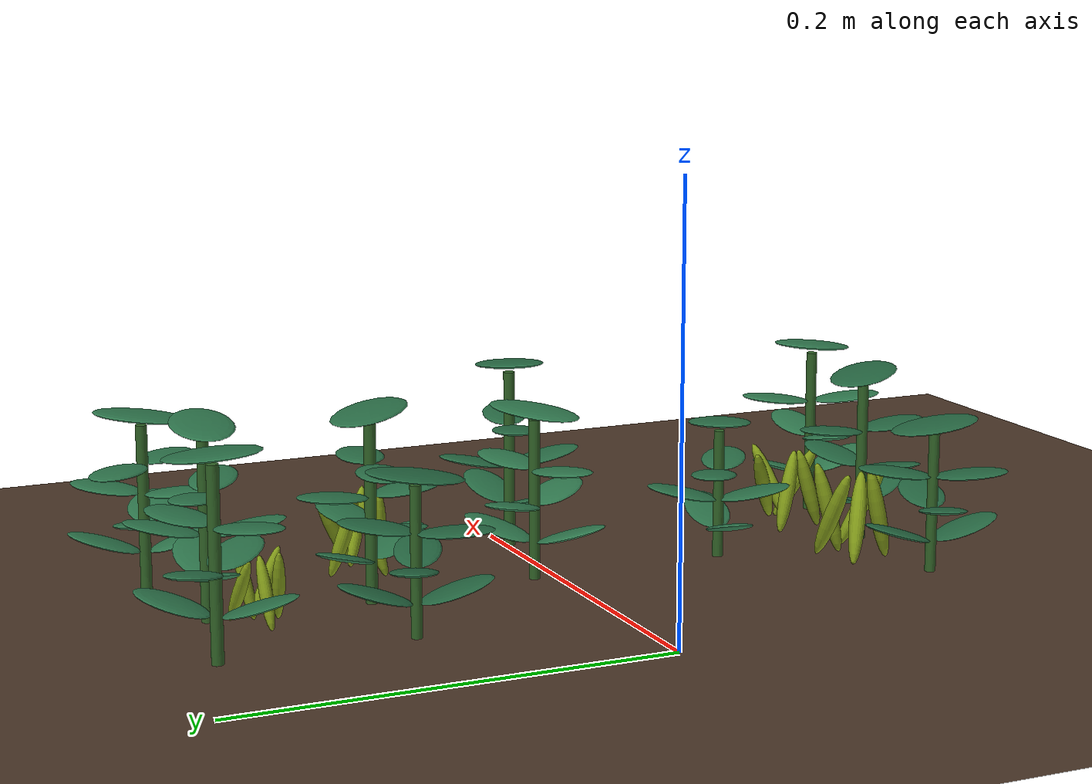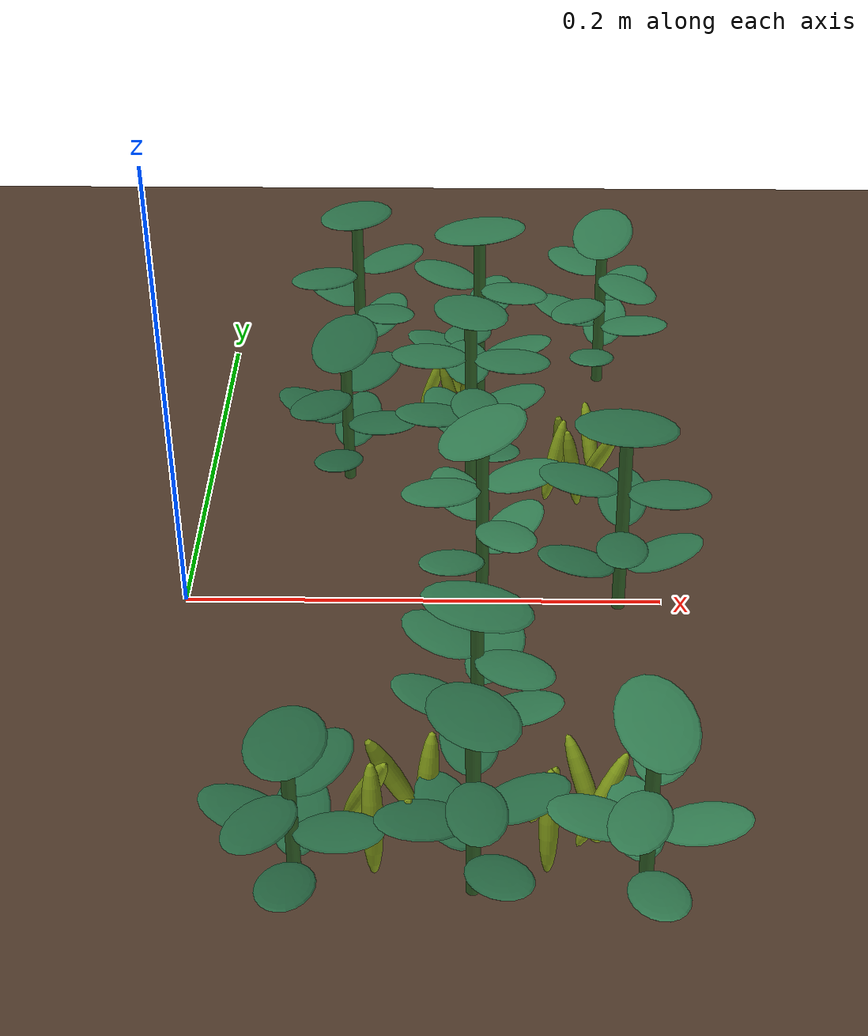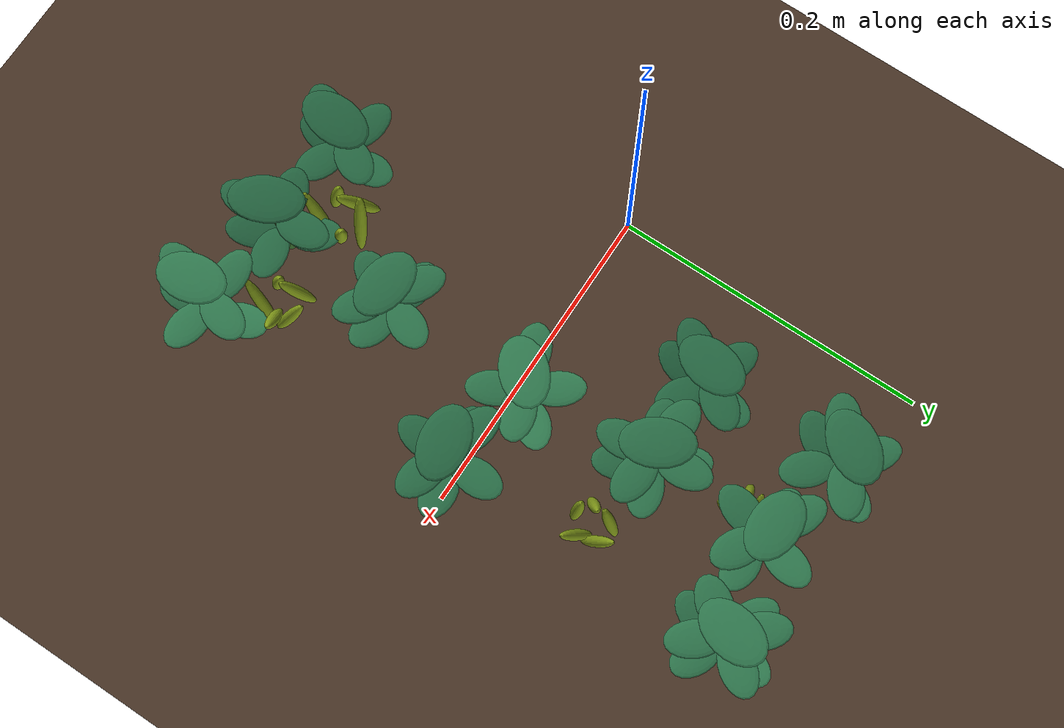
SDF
<sdf version="1.9">
 <world name="jim_field">
  <model name="ground_plane">
   <static>true</static>
   <link name="link">
    <collision name="collision">
     <geometry><plane><normal>0 0 1</normal><size>40 40</size></plane></geometry>
    </collision>
    <visual name="visual">
     <geometry><plane><normal>0 0 1</normal><size>40 40</size></plane></geometry>
     <material>
      <ambient>0.20 0.15 0.11 1</ambient>
      <diffuse>0.30 0.22 0.16 1</diffuse>
      <specular>0.01 0.01 0.01 1</specular>
     </material>
    </visual>
   </link>
  </model>
  <model name="field">
   <static>true</static>
   <pose>0.1837 -0.2516 0 0 0 0</pose>
   <model name="crop_108">
    <static>true</static>
    <pose>-0.1236 0.0887 0 0 0 0</pose>
    <link name="link">
     <visual name="stem">
      <pose>0 0 0.0328 0 0 0</pose>
      <geometry><cylinder><radius>0.0025</radius><length>0.0656</length></cylinder></geometry>
      <material>
       <ambient>0.10 0.22 0.09 1</ambient>
       <diffuse>0.20 0.40 0.16 1</diffuse>
       <specular>0.05 0.06 0.05 1</specular>
      </material>
     </visual>
     <visual name="leaflet_0_0">
      <pose>-0.0013 -0.0174 0.0197 0 -0.300 4.6384</pose>
      <geometry><ellipsoid><radii>0.0170 0.0105 0.0016</radii></ellipsoid></geometry>
      <material>
       <ambient>0.078 0.214 0.121 1</ambient>
       <diffuse>0.147 0.408 0.259 1</diffuse>
       <specular>0.05 0.06 0.05 1</specular>
      </material>
     </visual>
     <visual name="leaflet_0_1">
      <pose>0.0013 0.0174 0.0197 0 -0.300 7.7800</pose>
      <geometry><ellipsoid><radii>0.0170 0.0105 0.0016</radii></ellipsoid></geometry>
      <material>
       <ambient>0.078 0.214 0.121 1</ambient>
       <diffuse>0.147 0.408 0.259 1</diffuse>
       <specular>0.05 0.06 0.05 1</specular>
      </material>
     </visual>
     <visual name="leaflet_1_0">
      <pose>0.0167 -0.0051 0.0332 0 -0.200 5.9884</pose>
      <geometry><ellipsoid><radii>0.0170 0.0105 0.0016</radii></ellipsoid></geometry>
      <material>
       <ambient>0.078 0.214 0.121 1</ambient>
       <diffuse>0.147 0.408 0.259 1</diffuse>
       <specular>0.05 0.06 0.05 1</specular>
      </material>
     </visual>
     <visual name="leaflet_1_1">
      <pose>-0.0167 0.0051 0.0332 0 -0.200 9.1300</pose>
      <geometry><ellipsoid><radii>0.0170 0.0105 0.0016</radii></ellipsoid></geometry>
      <material>
       <ambient>0.078 0.214 0.121 1</ambient>
       <diffuse>0.147 0.408 0.259 1</diffuse>
       <specular>0.05 0.06 0.05 1</specular>
      </material>
     </visual>
     <visual name="leaflet_2_0">
      <pose>0.0086 0.0152 0.0468 0 -0.100 7.3384</pose>
      <geometry><ellipsoid><radii>0.0170 0.0105 0.0016</radii></ellipsoid></geometry>
      <material>
       <ambient>0.078 0.214 0.121 1</ambient>
       <diffuse>0.147 0.408 0.259 1</diffuse>
       <specular>0.05 0.06 0.05 1</specular>
      </material>
     </visual>
     <visual name="leaflet_2_1">
      <pose>-0.0086 -0.0152 0.0468 0 -0.100 10.4800</pose>
      <geometry><ellipsoid><radii>0.0170 0.0105 0.0016</radii></ellipsoid></geometry>
      <material>
       <ambient>0.078 0.214 0.121 1</ambient>
       <diffuse>0.147 0.408 0.259 1</diffuse>
       <specular>0.05 0.06 0.05 1</specular>
      </material>
     </visual>
     <visual name="leaflet_terminal">
      <pose>0 0 0.0696 0 -0.12 4.6384</pose>
      <geometry><ellipsoid><radii>0.0215 0.0140 0.0018</radii></ellipsoid></geometry>
      <material>
       <ambient>0.078 0.214 0.121 1</ambient>
       <diffuse>0.147 0.408 0.259 1</diffuse>
       <specular>0.05 0.06 0.05 1</specular>
      </material>
     </visual>
    </link>
   </model>
   <model name="crop_109">
    <static>true</static>
    <pose>-0.0611 0.0886 0 0 0 0</pose>
    <link name="link">
     <visual name="stem">
      <pose>0 0 0.0390 0 0 0</pose>
      <geometry><cylinder><radius>0.0026</radius><length>0.0779</length></cylinder></geometry>
      <material>
       <ambient>0.10 0.22 0.09 1</ambient>
       <diffuse>0.20 0.40 0.16 1</diffuse>
       <specular>0.05 0.06 0.05 1</specular>
      </material>
     </visual>
     <visual name="leaflet_0_0">
      <pose>0.0090 -0.0158 0.0234 0 -0.300 5.2289</pose>
      <geometry><ellipsoid><radii>0.0170 0.0105 0.0016</radii></ellipsoid></geometry>
      <material>
       <ambient>0.079 0.215 0.122 1</ambient>
       <diffuse>0.148 0.410 0.261 1</diffuse>
       <specular>0.05 0.06 0.05 1</specular>
      </material>
     </visual>
     <visual name="leaflet_0_1">
      <pose>-0.0090 0.0158 0.0234 0 -0.300 8.3705</pose>
      <geometry><ellipsoid><radii>0.0170 0.0105 0.0016</radii></ellipsoid></geometry>
      <material>
       <ambient>0.079 0.215 0.122 1</ambient>
       <diffuse>0.148 0.410 0.261 1</diffuse>
       <specular>0.05 0.06 0.05 1</specular>
      </material>
     </visual>
     <visual name="leaflet_1_0">
      <pose>0.0174 0.0053 0.0395 0 -0.200 6.5789</pose>
      <geometry><ellipsoid><radii>0.0170 0.0105 0.0016</radii></ellipsoid></geometry>
      <material>
       <ambient>0.079 0.215 0.122 1</ambient>
       <diffuse>0.148 0.410 0.261 1</diffuse>
       <specular>0.05 0.06 0.05 1</specular>
      </material>
     </visual>
     <visual name="leaflet_1_1">
      <pose>-0.0174 -0.0053 0.0395 0 -0.200 9.7205</pose>
      <geometry><ellipsoid><radii>0.0170 0.0105 0.0016</radii></ellipsoid></geometry>
      <material>
       <ambient>0.079 0.215 0.122 1</ambient>
       <diffuse>0.148 0.410 0.261 1</diffuse>
       <specular>0.05 0.06 0.05 1</specular>
      </material>
     </visual>
     <visual name="leaflet_2_0">
      <pose>-0.0014 0.0181 0.0556 0 -0.100 7.9289</pose>
      <geometry><ellipsoid><radii>0.0170 0.0105 0.0016</radii></ellipsoid></geometry>
      <material>
       <ambient>0.079 0.215 0.122 1</ambient>
       <diffuse>0.148 0.410 0.261 1</diffuse>
       <specular>0.05 0.06 0.05 1</specular>
      </material>
     </visual>
     <visual name="leaflet_2_1">
      <pose>0.0014 -0.0181 0.0556 0 -0.100 11.0705</pose>
      <geometry><ellipsoid><radii>0.0170 0.0105 0.0016</radii></ellipsoid></geometry>
      <material>
       <ambient>0.079 0.215 0.122 1</ambient>
       <diffuse>0.148 0.410 0.261 1</diffuse>
       <specular>0.05 0.06 0.05 1</specular>
      </material>
     </visual>
     <visual name="leaflet_terminal">
      <pose>0 0 0.0819 0 -0.12 5.2289</pose>
      <geometry><ellipsoid><radii>0.0215 0.0140 0.0018</radii></ellipsoid></geometry>
      <material>
       <ambient>0.079 0.215 0.122 1</ambient>
       <diffuse>0.148 0.410 0.261 1</diffuse>
       <specular>0.05 0.06 0.05 1</specular>
      </material>
     </visual>
    </link>
   </model>
   <model name="crop_110">
    <static>true</static>
    <pose>-0.0014 0.0822 0 0 0 0</pose>
    <link name="link">
     <visual name="stem">
      <pose>0 0 0.0406 0 0 0</pose>
      <geometry><cylinder><radius>0.0026</radius><length>0.0812</length></cylinder></geometry>
      <material>
       <ambient>0.10 0.22 0.09 1</ambient>
       <diffuse>0.20 0.40 0.16 1</diffuse>
       <specular>0.05 0.06 0.05 1</specular>
      </material>
     </visual>
     <visual name="leaflet_0_0">
      <pose>-0.0028 0.0181 0.0244 0 -0.300 1.7227</pose>
      <geometry><ellipsoid><radii>0.0170 0.0105 0.0016</radii></ellipsoid></geometry>
      <material>
       <ambient>0.099 0.249 0.149 1</ambient>
       <diffuse>0.188 0.477 0.308 1</diffuse>
       <specular>0.05 0.06 0.05 1</specular>
      </material>
     </visual>
     <visual name="leaflet_0_1">
      <pose>0.0028 -0.0181 0.0244 0 -0.300 4.8643</pose>
      <geometry><ellipsoid><radii>0.0170 0.0105 0.0016</radii></ellipsoid></geometry>
      <material>
       <ambient>0.099 0.249 0.149 1</ambient>
       <diffuse>0.188 0.477 0.308 1</diffuse>
       <specular>0.05 0.06 0.05 1</specular>
      </material>
     </visual>
     <visual name="leaflet_1_0">
      <pose>-0.0183 0.0013 0.0412 0 -0.200 3.0727</pose>
      <geometry><ellipsoid><radii>0.0170 0.0105 0.0016</radii></ellipsoid></geometry>
      <material>
       <ambient>0.099 0.249 0.149 1</ambient>
       <diffuse>0.188 0.477 0.308 1</diffuse>
       <specular>0.05 0.06 0.05 1</specular>
      </material>
     </visual>
     <visual name="leaflet_1_1">
      <pose>0.0183 -0.0013 0.0412 0 -0.200 6.2143</pose>
      <geometry><ellipsoid><radii>0.0170 0.0105 0.0016</radii></ellipsoid></geometry>
      <material>
       <ambient>0.099 0.249 0.149 1</ambient>
       <diffuse>0.188 0.477 0.308 1</diffuse>
       <specular>0.05 0.06 0.05 1</specular>
      </material>
     </visual>
     <visual name="leaflet_2_0">
      <pose>-0.0052 -0.0176 0.0580 0 -0.100 4.4227</pose>
      <geometry><ellipsoid><radii>0.0170 0.0105 0.0016</radii></ellipsoid></geometry>
      <material>
       <ambient>0.099 0.249 0.149 1</ambient>
       <diffuse>0.188 0.477 0.308 1</diffuse>
       <specular>0.05 0.06 0.05 1</specular>
      </material>
     </visual>
     <visual name="leaflet_2_1">
      <pose>0.0052 0.0176 0.0580 0 -0.100 7.5643</pose>
      <geometry><ellipsoid><radii>0.0170 0.0105 0.0016</radii></ellipsoid></geometry>
      <material>
       <ambient>0.099 0.249 0.149 1</ambient>
       <diffuse>0.188 0.477 0.308 1</diffuse>
       <specular>0.05 0.06 0.05 1</specular>
      </material>
     </visual>
     <visual name="leaflet_terminal">
      <pose>0 0 0.0852 0 -0.12 1.7227</pose>
      <geometry><ellipsoid><radii>0.0215 0.0140 0.0018</radii></ellipsoid></geometry>
      <material>
       <ambient>0.099 0.249 0.149 1</ambient>
       <diffuse>0.188 0.477 0.308 1</diffuse>
       <specular>0.05 0.06 0.05 1</specular>
      </material>
     </visual>
    </link>
   </model>
   <model name="crop_126">
    <static>true</static>
    <pose>-0.0603 0.1668 0 0 0 0</pose>
    <link name="link">
     <visual name="stem">
      <pose>0 0 0.0306 0 0 0</pose>
      <geometry><cylinder><radius>0.0025</radius><length>0.0612</length></cylinder></geometry>
      <material>
       <ambient>0.10 0.22 0.09 1</ambient>
       <diffuse>0.20 0.40 0.16 1</diffuse>
       <specular>0.05 0.06 0.05 1</specular>
      </material>
     </visual>
     <visual name="leaflet_0_0">
      <pose>-0.0170 0.0032 0.0184 0 -0.300 2.9547</pose>
      <geometry><ellipsoid><radii>0.0170 0.0105 0.0016</radii></ellipsoid></geometry>
      <material>
       <ambient>0.090 0.233 0.136 1</ambient>
       <diffuse>0.169 0.445 0.286 1</diffuse>
       <specular>0.05 0.06 0.05 1</specular>
      </material>
     </visual>
     <visual name="leaflet_0_1">
      <pose>0.0170 -0.0032 0.0184 0 -0.300 6.0963</pose>
      <geometry><ellipsoid><radii>0.0170 0.0105 0.0016</radii></ellipsoid></geometry>
      <material>
       <ambient>0.090 0.233 0.136 1</ambient>
       <diffuse>0.169 0.445 0.286 1</diffuse>
       <specular>0.05 0.06 0.05 1</specular>
      </material>
     </visual>
     <visual name="leaflet_1_0">
      <pose>-0.0068 -0.0158 0.0310 0 -0.200 4.3047</pose>
      <geometry><ellipsoid><radii>0.0170 0.0105 0.0016</radii></ellipsoid></geometry>
      <material>
       <ambient>0.090 0.233 0.136 1</ambient>
       <diffuse>0.169 0.445 0.286 1</diffuse>
       <specular>0.05 0.06 0.05 1</specular>
      </material>
     </visual>
     <visual name="leaflet_1_1">
      <pose>0.0068 0.0158 0.0310 0 -0.200 7.4463</pose>
      <geometry><ellipsoid><radii>0.0170 0.0105 0.0016</radii></ellipsoid></geometry>
      <material>
       <ambient>0.090 0.233 0.136 1</ambient>
       <diffuse>0.169 0.445 0.286 1</diffuse>
       <specular>0.05 0.06 0.05 1</specular>
      </material>
     </visual>
     <visual name="leaflet_2_0">
      <pose>0.0140 -0.0101 0.0437 0 -0.100 5.6547</pose>
      <geometry><ellipsoid><radii>0.0170 0.0105 0.0016</radii></ellipsoid></geometry>
      <material>
       <ambient>0.090 0.233 0.136 1</ambient>
       <diffuse>0.169 0.445 0.286 1</diffuse>
       <specular>0.05 0.06 0.05 1</specular>
      </material>
     </visual>
     <visual name="leaflet_2_1">
      <pose>-0.0140 0.0101 0.0437 0 -0.100 8.7963</pose>
      <geometry><ellipsoid><radii>0.0170 0.0105 0.0016</radii></ellipsoid></geometry>
      <material>
       <ambient>0.090 0.233 0.136 1</ambient>
       <diffuse>0.169 0.445 0.286 1</diffuse>
       <specular>0.05 0.06 0.05 1</specular>
      </material>
     </visual>
     <visual name="leaflet_terminal">
      <pose>0 0 0.0652 0 -0.12 2.9547</pose>
      <geometry><ellipsoid><radii>0.0215 0.0140 0.0018</radii></ellipsoid></geometry>
      <material>
       <ambient>0.090 0.233 0.136 1</ambient>
       <diffuse>0.169 0.445 0.286 1</diffuse>
       <specular>0.05 0.06 0.05 1</specular>
      </material>
     </visual>
    </link>
   </model>
   <model name="crop_143">
    <static>true</static>
    <pose>-0.0588 0.2617 0 0 0 0</pose>
    <link name="link">
     <visual name="stem">
      <pose>0 0 0.0374 0 0 0</pose>
      <geometry><cylinder><radius>0.0026</radius><length>0.0749</length></cylinder></geometry>
      <material>
       <ambient>0.10 0.22 0.09 1</ambient>
       <diffuse>0.20 0.40 0.16 1</diffuse>
       <specular>0.05 0.06 0.05 1</specular>
      </material>
     </visual>
     <visual name="leaflet_0_0">
      <pose>0.0126 0.0128 0.0225 0 -0.300 0.7928</pose>
      <geometry><ellipsoid><radii>0.0170 0.0105 0.0016</radii></ellipsoid></geometry>
      <material>
       <ambient>0.099 0.248 0.149 1</ambient>
       <diffuse>0.188 0.477 0.308 1</diffuse>
       <specular>0.05 0.06 0.05 1</specular>
      </material>
     </visual>
     <visual name="leaflet_0_1">
      <pose>-0.0126 -0.0128 0.0225 0 -0.300 3.9344</pose>
      <geometry><ellipsoid><radii>0.0170 0.0105 0.0016</radii></ellipsoid></geometry>
      <material>
       <ambient>0.099 0.248 0.149 1</ambient>
       <diffuse>0.188 0.477 0.308 1</diffuse>
       <specular>0.05 0.06 0.05 1</specular>
      </material>
     </visual>
     <visual name="leaflet_1_0">
      <pose>-0.0097 0.0151 0.0379 0 -0.200 2.1428</pose>
      <geometry><ellipsoid><radii>0.0170 0.0105 0.0016</radii></ellipsoid></geometry>
      <material>
       <ambient>0.099 0.248 0.149 1</ambient>
       <diffuse>0.188 0.477 0.308 1</diffuse>
       <specular>0.05 0.06 0.05 1</specular>
      </material>
     </visual>
     <visual name="leaflet_1_1">
      <pose>0.0097 -0.0151 0.0379 0 -0.200 5.2844</pose>
      <geometry><ellipsoid><radii>0.0170 0.0105 0.0016</radii></ellipsoid></geometry>
      <material>
       <ambient>0.099 0.248 0.149 1</ambient>
       <diffuse>0.188 0.477 0.308 1</diffuse>
       <specular>0.05 0.06 0.05 1</specular>
      </material>
     </visual>
     <visual name="leaflet_2_0">
      <pose>-0.0169 -0.0062 0.0534 0 -0.100 3.4928</pose>
      <geometry><ellipsoid><radii>0.0170 0.0105 0.0016</radii></ellipsoid></geometry>
      <material>
       <ambient>0.099 0.248 0.149 1</ambient>
       <diffuse>0.188 0.477 0.308 1</diffuse>
       <specular>0.05 0.06 0.05 1</specular>
      </material>
     </visual>
     <visual name="leaflet_2_1">
      <pose>0.0169 0.0062 0.0534 0 -0.100 6.6344</pose>
      <geometry><ellipsoid><radii>0.0170 0.0105 0.0016</radii></ellipsoid></geometry>
      <material>
       <ambient>0.099 0.248 0.149 1</ambient>
       <diffuse>0.188 0.477 0.308 1</diffuse>
       <specular>0.05 0.06 0.05 1</specular>
      </material>
     </visual>
     <visual name="leaflet_terminal">
      <pose>0 0 0.0789 0 -0.12 0.7928</pose>
      <geometry><ellipsoid><radii>0.0215 0.0140 0.0018</radii></ellipsoid></geometry>
      <material>
       <ambient>0.099 0.248 0.149 1</ambient>
       <diffuse>0.188 0.477 0.308 1</diffuse>
       <specular>0.05 0.06 0.05 1</specular>
      </material>
     </visual>
    </link>
   </model>
   <model name="crop_144">
    <static>true</static>
    <pose>-0.0017 0.2494 0 0 0 0</pose>
    <link name="link">
     <visual name="stem">
      <pose>0 0 0.0427 0 0 0</pose>
      <geometry><cylinder><radius>0.0027</radius><length>0.0854</length></cylinder></geometry>
      <material>
       <ambient>0.10 0.22 0.09 1</ambient>
       <diffuse>0.20 0.40 0.16 1</diffuse>
       <specular>0.05 0.06 0.05 1</specular>
      </material>
     </visual>
     <visual name="leaflet_0_0">
      <pose>-0.0183 -0.0030 0.0256 0 -0.300 3.3030</pose>
      <geometry><ellipsoid><radii>0.0170 0.0105 0.0016</radii></ellipsoid></geometry>
      <material>
       <ambient>0.084 0.223 0.128 1</ambient>
       <diffuse>0.157 0.426 0.272 1</diffuse>
       <specular>0.05 0.06 0.05 1</specular>
      </material>
     </visual>
     <visual name="leaflet_0_1">
      <pose>0.0183 0.0030 0.0256 0 -0.300 6.4446</pose>
      <geometry><ellipsoid><radii>0.0170 0.0105 0.0016</radii></ellipsoid></geometry>
      <material>
       <ambient>0.084 0.223 0.128 1</ambient>
       <diffuse>0.157 0.426 0.272 1</diffuse>
       <specular>0.05 0.06 0.05 1</specular>
      </material>
     </visual>
     <visual name="leaflet_1_0">
      <pose>-0.0011 -0.0185 0.0432 0 -0.200 4.6530</pose>
      <geometry><ellipsoid><radii>0.0170 0.0105 0.0016</radii></ellipsoid></geometry>
      <material>
       <ambient>0.084 0.223 0.128 1</ambient>
       <diffuse>0.157 0.426 0.272 1</diffuse>
       <specular>0.05 0.06 0.05 1</specular>
      </material>
     </visual>
     <visual name="leaflet_1_1">
      <pose>0.0011 0.0185 0.0432 0 -0.200 7.7946</pose>
      <geometry><ellipsoid><radii>0.0170 0.0105 0.0016</radii></ellipsoid></geometry>
      <material>
       <ambient>0.084 0.223 0.128 1</ambient>
       <diffuse>0.157 0.426 0.272 1</diffuse>
       <specular>0.05 0.06 0.05 1</specular>
      </material>
     </visual>
     <visual name="leaflet_2_0">
      <pose>0.0178 -0.0051 0.0609 0 -0.100 6.0030</pose>
      <geometry><ellipsoid><radii>0.0170 0.0105 0.0016</radii></ellipsoid></geometry>
      <material>
       <ambient>0.084 0.223 0.128 1</ambient>
       <diffuse>0.157 0.426 0.272 1</diffuse>
       <specular>0.05 0.06 0.05 1</specular>
      </material>
     </visual>
     <visual name="leaflet_2_1">
      <pose>-0.0178 0.0051 0.0609 0 -0.100 9.1446</pose>
      <geometry><ellipsoid><radii>0.0170 0.0105 0.0016</radii></ellipsoid></geometry>
      <material>
       <ambient>0.084 0.223 0.128 1</ambient>
       <diffuse>0.157 0.426 0.272 1</diffuse>
       <specular>0.05 0.06 0.05 1</specular>
      </material>
     </visual>
     <visual name="leaflet_terminal">
      <pose>0 0 0.0894 0 -0.12 3.3030</pose>
      <geometry><ellipsoid><radii>0.0215 0.0140 0.0018</radii></ellipsoid></geometry>
      <material>
       <ambient>0.084 0.223 0.128 1</ambient>
       <diffuse>0.157 0.426 0.272 1</diffuse>
       <specular>0.05 0.06 0.05 1</specular>
      </material>
     </visual>
    </link>
   </model>
   <model name="crop_159">
    <static>true</static>
    <pose>-0.1200 0.3439 0 0 0 0</pose>
    <link name="link">
     <visual name="stem">
      <pose>0 0 0.0335 0 0 0</pose>
      <geometry><cylinder><radius>0.0025</radius><length>0.0669</length></cylinder></geometry>
      <material>
       <ambient>0.10 0.22 0.09 1</ambient>
       <diffuse>0.20 0.40 0.16 1</diffuse>
       <specular>0.05 0.06 0.05 1</specular>
      </material>
     </visual>
     <visual name="leaflet_0_0">
      <pose>0.0034 0.0172 0.0201 0 -0.300 1.3753</pose>
      <geometry><ellipsoid><radii>0.0170 0.0105 0.0016</radii></ellipsoid></geometry>
      <material>
       <ambient>0.076 0.210 0.118 1</ambient>
       <diffuse>0.141 0.399 0.253 1</diffuse>
       <specular>0.05 0.06 0.05 1</specular>
      </material>
     </visual>
     <visual name="leaflet_0_1">
      <pose>-0.0034 -0.0172 0.0201 0 -0.300 4.5169</pose>
      <geometry><ellipsoid><radii>0.0170 0.0105 0.0016</radii></ellipsoid></geometry>
      <material>
       <ambient>0.076 0.210 0.118 1</ambient>
       <diffuse>0.141 0.399 0.253 1</diffuse>
       <specular>0.05 0.06 0.05 1</specular>
      </material>
     </visual>
     <visual name="leaflet_1_0">
      <pose>-0.0161 0.0071 0.0339 0 -0.200 2.7253</pose>
      <geometry><ellipsoid><radii>0.0170 0.0105 0.0016</radii></ellipsoid></geometry>
      <material>
       <ambient>0.076 0.210 0.118 1</ambient>
       <diffuse>0.141 0.399 0.253 1</diffuse>
       <specular>0.05 0.06 0.05 1</specular>
      </material>
     </visual>
     <visual name="leaflet_1_1">
      <pose>0.0161 -0.0071 0.0339 0 -0.200 5.8669</pose>
      <geometry><ellipsoid><radii>0.0170 0.0105 0.0016</radii></ellipsoid></geometry>
      <material>
       <ambient>0.076 0.210 0.118 1</ambient>
       <diffuse>0.141 0.399 0.253 1</diffuse>
       <specular>0.05 0.06 0.05 1</specular>
      </material>
     </visual>
     <visual name="leaflet_2_0">
      <pose>-0.0104 -0.0141 0.0477 0 -0.100 4.0753</pose>
      <geometry><ellipsoid><radii>0.0170 0.0105 0.0016</radii></ellipsoid></geometry>
      <material>
       <ambient>0.076 0.210 0.118 1</ambient>
       <diffuse>0.141 0.399 0.253 1</diffuse>
       <specular>0.05 0.06 0.05 1</specular>
      </material>
     </visual>
     <visual name="leaflet_2_1">
      <pose>0.0104 0.0141 0.0477 0 -0.100 7.2169</pose>
      <geometry><ellipsoid><radii>0.0170 0.0105 0.0016</radii></ellipsoid></geometry>
      <material>
       <ambient>0.076 0.210 0.118 1</ambient>
       <diffuse>0.141 0.399 0.253 1</diffuse>
       <specular>0.05 0.06 0.05 1</specular>
      </material>
     </visual>
     <visual name="leaflet_terminal">
      <pose>0 0 0.0709 0 -0.12 1.3753</pose>
      <geometry><ellipsoid><radii>0.0215 0.0140 0.0018</radii></ellipsoid></geometry>
      <material>
       <ambient>0.076 0.210 0.118 1</ambient>
       <diffuse>0.141 0.399 0.253 1</diffuse>
       <specular>0.05 0.06 0.05 1</specular>
      </material>
     </visual>
    </link>
   </model>
   <model name="crop_160">
    <static>true</static>
    <pose>-0.0645 0.3436 0 0 0 0</pose>
    <link name="link">
     <visual name="stem">
      <pose>0 0 0.0415 0 0 0</pose>
      <geometry><cylinder><radius>0.0027</radius><length>0.0830</length></cylinder></geometry>
      <material>
       <ambient>0.10 0.22 0.09 1</ambient>
       <diffuse>0.20 0.40 0.16 1</diffuse>
       <specular>0.05 0.06 0.05 1</specular>
      </material>
     </visual>
     <visual name="leaflet_0_0">
      <pose>0.0097 -0.0157 0.0249 0 -0.300 5.2648</pose>
      <geometry><ellipsoid><radii>0.0170 0.0105 0.0016</radii></ellipsoid></geometry>
      <material>
       <ambient>0.089 0.231 0.135 1</ambient>
       <diffuse>0.168 0.443 0.284 1</diffuse>
       <specular>0.05 0.06 0.05 1</specular>
      </material>
     </visual>
     <visual name="leaflet_0_1">
      <pose>-0.0097 0.0157 0.0249 0 -0.300 8.4063</pose>
      <geometry><ellipsoid><radii>0.0170 0.0105 0.0016</radii></ellipsoid></geometry>
      <material>
       <ambient>0.089 0.231 0.135 1</ambient>
       <diffuse>0.168 0.443 0.284 1</diffuse>
       <specular>0.05 0.06 0.05 1</specular>
      </material>
     </visual>
     <visual name="leaflet_1_0">
      <pose>0.0174 0.0060 0.0378 0 -0.200 6.6148</pose>
      <geometry><ellipsoid><radii>0.0170 0.0105 0.0016</radii></ellipsoid></geometry>
      <material>
       <ambient>0.089 0.231 0.135 1</ambient>
       <diffuse>0.168 0.443 0.284 1</diffuse>
       <specular>0.05 0.06 0.05 1</specular>
      </material>
     </visual>
     <visual name="leaflet_1_1">
      <pose>-0.0174 -0.0060 0.0378 0 -0.200 9.7563</pose>
      <geometry><ellipsoid><radii>0.0170 0.0105 0.0016</radii></ellipsoid></geometry>
      <material>
       <ambient>0.089 0.231 0.135 1</ambient>
       <diffuse>0.168 0.443 0.284 1</diffuse>
       <specular>0.05 0.06 0.05 1</specular>
      </material>
     </visual>
     <visual name="leaflet_2_0">
      <pose>-0.0020 0.0183 0.0506 0 -0.100 7.9648</pose>
      <geometry><ellipsoid><radii>0.0170 0.0105 0.0016</radii></ellipsoid></geometry>
      <material>
       <ambient>0.089 0.231 0.135 1</ambient>
       <diffuse>0.168 0.443 0.284 1</diffuse>
       <specular>0.05 0.06 0.05 1</specular>
      </material>
     </visual>
     <visual name="leaflet_2_1">
      <pose>0.0020 -0.0183 0.0506 0 -0.100 11.1063</pose>
      <geometry><ellipsoid><radii>0.0170 0.0105 0.0016</radii></ellipsoid></geometry>
      <material>
       <ambient>0.089 0.231 0.135 1</ambient>
       <diffuse>0.168 0.443 0.284 1</diffuse>
       <specular>0.05 0.06 0.05 1</specular>
      </material>
     </visual>
     <visual name="leaflet_3_0">
      <pose>-0.0183 0.0020 0.0635 0 0.000 9.3148</pose>
      <geometry><ellipsoid><radii>0.0170 0.0105 0.0016</radii></ellipsoid></geometry>
      <material>
       <ambient>0.089 0.231 0.135 1</ambient>
       <diffuse>0.168 0.443 0.284 1</diffuse>
       <specular>0.05 0.06 0.05 1</specular>
      </material>
     </visual>
     <visual name="leaflet_3_1">
      <pose>0.0183 -0.0020 0.0635 0 0.000 12.4563</pose>
      <geometry><ellipsoid><radii>0.0170 0.0105 0.0016</radii></ellipsoid></geometry>
      <material>
       <ambient>0.089 0.231 0.135 1</ambient>
       <diffuse>0.168 0.443 0.284 1</diffuse>
       <specular>0.05 0.06 0.05 1</specular>
      </material>
     </visual>
     <visual name="leaflet_terminal">
      <pose>0 0 0.0870 0 -0.12 5.2648</pose>
      <geometry><ellipsoid><radii>0.0215 0.0140 0.0018</radii></ellipsoid></geometry>
      <material>
       <ambient>0.089 0.231 0.135 1</ambient>
       <diffuse>0.168 0.443 0.284 1</diffuse>
       <specular>0.05 0.06 0.05 1</specular>
      </material>
     </visual>
    </link>
   </model>
   <model name="crop_176">
    <static>true</static>
    <pose>-0.1193 0.4313 0 0 0 0</pose>
    <link name="link">
     <visual name="stem">
      <pose>0 0 0.0424 0 0 0</pose>
      <geometry><cylinder><radius>0.0027</radius><length>0.0847</length></cylinder></geometry>
      <material>
       <ambient>0.10 0.22 0.09 1</ambient>
       <diffuse>0.20 0.40 0.16 1</diffuse>
       <specular>0.05 0.06 0.05 1</specular>
      </material>
     </visual>
     <visual name="leaflet_0_0">
      <pose>-0.0097 -0.0158 0.0254 0 -0.300 4.1622</pose>
      <geometry><ellipsoid><radii>0.0170 0.0105 0.0016</radii></ellipsoid></geometry>
      <material>
       <ambient>0.089 0.232 0.136 1</ambient>
       <diffuse>0.169 0.444 0.285 1</diffuse>
       <specular>0.05 0.06 0.05 1</specular>
      </material>
     </visual>
     <visual name="leaflet_0_1">
      <pose>0.0097 0.0158 0.0254 0 -0.300 7.3038</pose>
      <geometry><ellipsoid><radii>0.0170 0.0105 0.0016</radii></ellipsoid></geometry>
      <material>
       <ambient>0.089 0.232 0.136 1</ambient>
       <diffuse>0.169 0.444 0.285 1</diffuse>
       <specular>0.05 0.06 0.05 1</specular>
      </material>
     </visual>
     <visual name="leaflet_1_0">
      <pose>0.0133 -0.0129 0.0429 0 -0.200 5.5122</pose>
      <geometry><ellipsoid><radii>0.0170 0.0105 0.0016</radii></ellipsoid></geometry>
      <material>
       <ambient>0.089 0.232 0.136 1</ambient>
       <diffuse>0.169 0.444 0.285 1</diffuse>
       <specular>0.05 0.06 0.05 1</specular>
      </material>
     </visual>
     <visual name="leaflet_1_1">
      <pose>-0.0133 0.0129 0.0429 0 -0.200 8.6538</pose>
      <geometry><ellipsoid><radii>0.0170 0.0105 0.0016</radii></ellipsoid></geometry>
      <material>
       <ambient>0.089 0.232 0.136 1</ambient>
       <diffuse>0.169 0.444 0.285 1</diffuse>
       <specular>0.05 0.06 0.05 1</specular>
      </material>
     </visual>
     <visual name="leaflet_2_0">
      <pose>0.0155 0.0101 0.0604 0 -0.100 6.8622</pose>
      <geometry><ellipsoid><radii>0.0170 0.0105 0.0016</radii></ellipsoid></geometry>
      <material>
       <ambient>0.089 0.232 0.136 1</ambient>
       <diffuse>0.169 0.444 0.285 1</diffuse>
       <specular>0.05 0.06 0.05 1</specular>
      </material>
     </visual>
     <visual name="leaflet_2_1">
      <pose>-0.0155 -0.0101 0.0604 0 -0.100 10.0038</pose>
      <geometry><ellipsoid><radii>0.0170 0.0105 0.0016</radii></ellipsoid></geometry>
      <material>
       <ambient>0.089 0.232 0.136 1</ambient>
       <diffuse>0.169 0.444 0.285 1</diffuse>
       <specular>0.05 0.06 0.05 1</specular>
      </material>
     </visual>
     <visual name="leaflet_terminal">
      <pose>0 0 0.0887 0 -0.12 4.1622</pose>
      <geometry><ellipsoid><radii>0.0215 0.0140 0.0018</radii></ellipsoid></geometry>
      <material>
       <ambient>0.089 0.232 0.136 1</ambient>
       <diffuse>0.169 0.444 0.285 1</diffuse>
       <specular>0.05 0.06 0.05 1</specular>
      </material>
     </visual>
    </link>
   </model>
   <model name="crop_177">
    <static>true</static>
    <pose>-0.0610 0.4183 0 0 0 0</pose>
    <link name="link">
     <visual name="stem">
      <pose>0 0 0.0418 0 0 0</pose>
      <geometry><cylinder><radius>0.0027</radius><length>0.0836</length></cylinder></geometry>
      <material>
       <ambient>0.10 0.22 0.09 1</ambient>
       <diffuse>0.20 0.40 0.16 1</diffuse>
       <specular>0.05 0.06 0.05 1</specular>
      </material>
     </visual>
     <visual name="leaflet_0_0">
      <pose>0.0184 -0.0014 0.0251 0 -0.300 6.2098</pose>
      <geometry><ellipsoid><radii>0.0170 0.0105 0.0016</radii></ellipsoid></geometry>
      <material>
       <ambient>0.094 0.239 0.141 1</ambient>
       <diffuse>0.177 0.459 0.295 1</diffuse>
       <specular>0.05 0.06 0.05 1</specular>
      </material>
     </visual>
     <visual name="leaflet_0_1">
      <pose>-0.0184 0.0014 0.0251 0 -0.300 9.3514</pose>
      <geometry><ellipsoid><radii>0.0170 0.0105 0.0016</radii></ellipsoid></geometry>
      <material>
       <ambient>0.094 0.239 0.141 1</ambient>
       <diffuse>0.177 0.459 0.295 1</diffuse>
       <specular>0.05 0.06 0.05 1</specular>
      </material>
     </visual>
     <visual name="leaflet_1_0">
      <pose>0.0054 0.0177 0.0424 0 -0.200 7.5598</pose>
      <geometry><ellipsoid><radii>0.0170 0.0105 0.0016</radii></ellipsoid></geometry>
      <material>
       <ambient>0.094 0.239 0.141 1</ambient>
       <diffuse>0.177 0.459 0.295 1</diffuse>
       <specular>0.05 0.06 0.05 1</specular>
      </material>
     </visual>
     <visual name="leaflet_1_1">
      <pose>-0.0054 -0.0177 0.0424 0 -0.200 10.7014</pose>
      <geometry><ellipsoid><radii>0.0170 0.0105 0.0016</radii></ellipsoid></geometry>
      <material>
       <ambient>0.094 0.239 0.141 1</ambient>
       <diffuse>0.177 0.459 0.295 1</diffuse>
       <specular>0.05 0.06 0.05 1</specular>
      </material>
     </visual>
     <visual name="leaflet_2_0">
      <pose>-0.0161 0.0091 0.0596 0 -0.100 8.9098</pose>
      <geometry><ellipsoid><radii>0.0170 0.0105 0.0016</radii></ellipsoid></geometry>
      <material>
       <ambient>0.094 0.239 0.141 1</ambient>
       <diffuse>0.177 0.459 0.295 1</diffuse>
       <specular>0.05 0.06 0.05 1</specular>
      </material>
     </visual>
     <visual name="leaflet_2_1">
      <pose>0.0161 -0.0091 0.0596 0 -0.100 12.0514</pose>
      <geometry><ellipsoid><radii>0.0170 0.0105 0.0016</radii></ellipsoid></geometry>
      <material>
       <ambient>0.094 0.239 0.141 1</ambient>
       <diffuse>0.177 0.459 0.295 1</diffuse>
       <specular>0.05 0.06 0.05 1</specular>
      </material>
     </visual>
     <visual name="leaflet_terminal">
      <pose>0 0 0.0876 0 -0.12 6.2098</pose>
      <geometry><ellipsoid><radii>0.0215 0.0140 0.0018</radii></ellipsoid></geometry>
      <material>
       <ambient>0.094 0.239 0.141 1</ambient>
       <diffuse>0.177 0.459 0.295 1</diffuse>
       <specular>0.05 0.06 0.05 1</specular>
      </material>
     </visual>
    </link>
   </model>
   <model name="crop_178">
    <static>true</static>
    <pose>-0.0029 0.4296 0 0 0 0</pose>
    <link name="link">
     <visual name="stem">
      <pose>0 0 0.0383 0 0 0</pose>
      <geometry><cylinder><radius>0.0026</radius><length>0.0766</length></cylinder></geometry>
      <material>
       <ambient>0.10 0.22 0.09 1</ambient>
       <diffuse>0.20 0.40 0.16 1</diffuse>
       <specular>0.05 0.06 0.05 1</specular>
      </material>
     </visual>
     <visual name="leaflet_0_0">
      <pose>0.0039 0.0177 0.0230 0 -0.300 1.3562</pose>
      <geometry><ellipsoid><radii>0.0170 0.0105 0.0016</radii></ellipsoid></geometry>
      <material>
       <ambient>0.096 0.243 0.145 1</ambient>
       <diffuse>0.182 0.467 0.301 1</diffuse>
       <specular>0.05 0.06 0.05 1</specular>
      </material>
     </visual>
     <visual name="leaflet_0_1">
      <pose>-0.0039 -0.0177 0.0230 0 -0.300 4.4978</pose>
      <geometry><ellipsoid><radii>0.0170 0.0105 0.0016</radii></ellipsoid></geometry>
      <material>
       <ambient>0.096 0.243 0.145 1</ambient>
       <diffuse>0.182 0.467 0.301 1</diffuse>
       <specular>0.05 0.06 0.05 1</specular>
      </material>
     </visual>
     <visual name="leaflet_1_0">
      <pose>-0.0164 0.0076 0.0349 0 -0.200 2.7062</pose>
      <geometry><ellipsoid><radii>0.0170 0.0105 0.0016</radii></ellipsoid></geometry>
      <material>
       <ambient>0.096 0.243 0.145 1</ambient>
       <diffuse>0.182 0.467 0.301 1</diffuse>
       <specular>0.05 0.06 0.05 1</specular>
      </material>
     </visual>
     <visual name="leaflet_1_1">
      <pose>0.0164 -0.0076 0.0349 0 -0.200 5.8478</pose>
      <geometry><ellipsoid><radii>0.0170 0.0105 0.0016</radii></ellipsoid></geometry>
      <material>
       <ambient>0.096 0.243 0.145 1</ambient>
       <diffuse>0.182 0.467 0.301 1</diffuse>
       <specular>0.05 0.06 0.05 1</specular>
      </material>
     </visual>
     <visual name="leaflet_2_0">
      <pose>-0.0110 -0.0143 0.0467 0 -0.100 4.0562</pose>
      <geometry><ellipsoid><radii>0.0170 0.0105 0.0016</radii></ellipsoid></geometry>
      <material>
       <ambient>0.096 0.243 0.145 1</ambient>
       <diffuse>0.182 0.467 0.301 1</diffuse>
       <specular>0.05 0.06 0.05 1</specular>
      </material>
     </visual>
     <visual name="leaflet_2_1">
      <pose>0.0110 0.0143 0.0467 0 -0.100 7.1978</pose>
      <geometry><ellipsoid><radii>0.0170 0.0105 0.0016</radii></ellipsoid></geometry>
      <material>
       <ambient>0.096 0.243 0.145 1</ambient>
       <diffuse>0.182 0.467 0.301 1</diffuse>
       <specular>0.05 0.06 0.05 1</specular>
      </material>
     </visual>
     <visual name="leaflet_3_0">
      <pose>0.0116 -0.0139 0.0586 0 0.000 5.4062</pose>
      <geometry><ellipsoid><radii>0.0170 0.0105 0.0016</radii></ellipsoid></geometry>
      <material>
       <ambient>0.096 0.243 0.145 1</ambient>
       <diffuse>0.182 0.467 0.301 1</diffuse>
       <specular>0.05 0.06 0.05 1</specular>
      </material>
     </visual>
     <visual name="leaflet_3_1">
      <pose>-0.0116 0.0139 0.0586 0 0.000 8.5478</pose>
      <geometry><ellipsoid><radii>0.0170 0.0105 0.0016</radii></ellipsoid></geometry>
      <material>
       <ambient>0.096 0.243 0.145 1</ambient>
       <diffuse>0.182 0.467 0.301 1</diffuse>
       <specular>0.05 0.06 0.05 1</specular>
      </material>
     </visual>
     <visual name="leaflet_terminal">
      <pose>0 0 0.0806 0 -0.12 1.3562</pose>
      <geometry><ellipsoid><radii>0.0215 0.0140 0.0018</radii></ellipsoid></geometry>
      <material>
       <ambient>0.096 0.243 0.145 1</ambient>
       <diffuse>0.182 0.467 0.301 1</diffuse>
       <specular>0.05 0.06 0.05 1</specular>
      </material>
     </visual>
    </link>
   </model>
   <model name="weed_0">
    <static>true</static>
    <pose>-0.0262 0.1100 0 0 0 0</pose>
    <link name="link">
     <visual name="blade_0">
      <pose>-0.0083 -0.0077 0.0205 0.1920 -0.2072 3.8890</pose>
      <geometry><ellipsoid><radii>0.0036 0.0036 0.0205</radii></ellipsoid></geometry>
      <material>
       <ambient>0.24 0.30 0.04 1</ambient>
       <diffuse>0.52 0.62 0.10 1</diffuse>
       <specular>0.05 0.06 0.05 1</specular>
      </material>
     </visual>
     <visual name="blade_1">
      <pose>0.0067 -0.0091 0.0205 0.4351 0.3191 5.3451</pose>
      <geometry><ellipsoid><radii>0.0036 0.0036 0.0205</radii></ellipsoid></geometry>
      <material>
       <ambient>0.24 0.30 0.04 1</ambient>
       <diffuse>0.52 0.62 0.10 1</diffuse>
       <specular>0.05 0.06 0.05 1</specular>
      </material>
     </visual>
     <visual name="blade_2">
      <pose>0.0109 0.0030 0.0205 -0.1376 0.4990 6.5522</pose>
      <geometry><ellipsoid><radii>0.0036 0.0036 0.0205</radii></ellipsoid></geometry>
      <material>
       <ambient>0.24 0.30 0.04 1</ambient>
       <diffuse>0.52 0.62 0.10 1</diffuse>
       <specular>0.05 0.06 0.05 1</specular>
      </material>
     </visual>
     <visual name="blade_3">
      <pose>0.0049 0.0102 0.0205 -0.4610 0.2194 7.4099</pose>
      <geometry><ellipsoid><radii>0.0036 0.0036 0.0205</radii></ellipsoid></geometry>
      <material>
       <ambient>0.24 0.30 0.04 1</ambient>
       <diffuse>0.52 0.62 0.10 1</diffuse>
       <specular>0.05 0.06 0.05 1</specular>
      </material>
     </visual>
     <visual name="blade_4">
      <pose>-0.0100 0.0052 0.0205 -0.1742 -0.3340 8.9440</pose>
      <geometry><ellipsoid><radii>0.0036 0.0036 0.0205</radii></ellipsoid></geometry>
      <material>
       <ambient>0.24 0.30 0.04 1</ambient>
       <diffuse>0.52 0.62 0.10 1</diffuse>
       <specular>0.05 0.06 0.05 1</specular>
      </material>
     </visual>
    </link>
   </model>
   <model name="weed_1">
    <static>true</static>
    <pose>-0.0882 0.1100 0 0 0 0</pose>
    <link name="link">
     <visual name="blade_0">
      <pose>0.0076 -0.0098 0.0225 0.4098 0.3195 5.3747</pose>
      <geometry><ellipsoid><radii>0.0039 0.0039 0.0225</radii></ellipsoid></geometry>
      <material>
       <ambient>0.24 0.30 0.04 1</ambient>
       <diffuse>0.52 0.62 0.10 1</diffuse>
       <specular>0.05 0.06 0.05 1</specular>
      </material>
     </visual>
     <visual name="blade_1">
      <pose>0.0103 0.0070 0.0225 -0.1472 0.2169 6.8793</pose>
      <geometry><ellipsoid><radii>0.0039 0.0039 0.0225</radii></ellipsoid></geometry>
      <material>
       <ambient>0.24 0.30 0.04 1</ambient>
       <diffuse>0.52 0.62 0.10 1</diffuse>
       <specular>0.05 0.06 0.05 1</specular>
      </material>
     </visual>
     <visual name="blade_2">
      <pose>-0.0024 0.0122 0.0225 -0.4052 -0.0809 8.0511</pose>
      <geometry><ellipsoid><radii>0.0039 0.0039 0.0225</radii></ellipsoid></geometry>
      <material>
       <ambient>0.24 0.30 0.04 1</ambient>
       <diffuse>0.52 0.62 0.10 1</diffuse>
       <specular>0.05 0.06 0.05 1</specular>
      </material>
     </visual>
     <visual name="blade_3">
      <pose>-0.0117 0.0041 0.0225 -0.1613 -0.4629 9.0895</pose>
      <geometry><ellipsoid><radii>0.0039 0.0039 0.0225</radii></ellipsoid></geometry>
      <material>
       <ambient>0.24 0.30 0.04 1</ambient>
       <diffuse>0.52 0.62 0.10 1</diffuse>
       <specular>0.05 0.06 0.05 1</specular>
      </material>
     </visual>
     <visual name="blade_4">
      <pose>-0.0084 -0.0091 0.0225 0.1708 -0.1583 10.2479</pose>
      <geometry><ellipsoid><radii>0.0039 0.0039 0.0225</radii></ellipsoid></geometry>
      <material>
       <ambient>0.24 0.30 0.04 1</ambient>
       <diffuse>0.52 0.62 0.10 1</diffuse>
       <specular>0.05 0.06 0.05 1</specular>
      </material>
     </visual>
    </link>
   </model>
   <model name="weed_far_1">
    <static>true</static>
    <pose>-0.0740 0.3992 0 0 0 0</pose>
    <link name="link">
     <visual name="blade_0">
      <pose>-0.0017 0.0089 0.0165 -0.4539 -0.0844 1.7546</pose>
      <geometry><ellipsoid><radii>0.0029 0.0029 0.0165</radii></ellipsoid></geometry>
      <material>
       <ambient>0.24 0.30 0.04 1</ambient>
       <diffuse>0.52 0.62 0.10 1</diffuse>
       <specular>0.05 0.06 0.05 1</specular>
      </material>
     </visual>
     <visual name="blade_1">
      <pose>-0.0091 -0.0005 0.0165 0.0210 -0.3732 3.1979</pose>
      <geometry><ellipsoid><radii>0.0029 0.0029 0.0165</radii></ellipsoid></geometry>
      <material>
       <ambient>0.24 0.30 0.04 1</ambient>
       <diffuse>0.52 0.62 0.10 1</diffuse>
       <specular>0.05 0.06 0.05 1</specular>
      </material>
     </visual>
     <visual name="blade_2">
      <pose>-0.0009 -0.0090 0.0165 0.2459 -0.0240 4.6152</pose>
      <geometry><ellipsoid><radii>0.0029 0.0029 0.0165</radii></ellipsoid></geometry>
      <material>
       <ambient>0.24 0.30 0.04 1</ambient>
       <diffuse>0.52 0.62 0.10 1</diffuse>
       <specular>0.05 0.06 0.05 1</specular>
      </material>
     </visual>
     <visual name="blade_3">
      <pose>0.0070 -0.0058 0.0165 0.2714 0.3259 5.5889</pose>
      <geometry><ellipsoid><radii>0.0029 0.0029 0.0165</radii></ellipsoid></geometry>
      <material>
       <ambient>0.24 0.30 0.04 1</ambient>
       <diffuse>0.52 0.62 0.10 1</diffuse>
       <specular>0.05 0.06 0.05 1</specular>
      </material>
     </visual>
     <visual name="blade_4">
      <pose>0.0085 0.0031 0.0165 -0.0887 0.2418 6.6346</pose>
      <geometry><ellipsoid><radii>0.0029 0.0029 0.0165</radii></ellipsoid></geometry>
      <material>
       <ambient>0.24 0.30 0.04 1</ambient>
       <diffuse>0.52 0.62 0.10 1</diffuse>
       <specular>0.05 0.06 0.05 1</specular>
      </material>
     </visual>
    </link>
   </model>
   <model name="weed_far_3">
    <static>true</static>
    <pose>-0.0171 0.3334 0 0 0 0</pose>
    <link name="link">
     <visual name="blade_0">
      <pose>-0.0098 -0.0044 0.0195 0.1364 -0.3040 3.5633</pose>
      <geometry><ellipsoid><radii>0.0034 0.0034 0.0195</radii></ellipsoid></geometry>
      <material>
       <ambient>0.24 0.30 0.04 1</ambient>
       <diffuse>0.52 0.62 0.10 1</diffuse>
       <specular>0.05 0.06 0.05 1</specular>
      </material>
     </visual>
     <visual name="blade_1">
      <pose>-0.0019 -0.0106 0.0195 0.1502 -0.0275 4.5313</pose>
      <geometry><ellipsoid><radii>0.0034 0.0034 0.0195</radii></ellipsoid></geometry>
      <material>
       <ambient>0.24 0.30 0.04 1</ambient>
       <diffuse>0.52 0.62 0.10 1</diffuse>
       <specular>0.05 0.06 0.05 1</specular>
      </material>
     </visual>
     <visual name="blade_2">
      <pose>0.0101 -0.0036 0.0195 0.1619 0.4589 5.9440</pose>
      <geometry><ellipsoid><radii>0.0034 0.0034 0.0195</radii></ellipsoid></geometry>
      <material>
       <ambient>0.24 0.30 0.04 1</ambient>
       <diffuse>0.52 0.62 0.10 1</diffuse>
       <specular>0.05 0.06 0.05 1</specular>
      </material>
     </visual>
     <visual name="blade_3">
      <pose>0.0066 0.0085 0.0195 -0.3901 0.3045 7.1912</pose>
      <geometry><ellipsoid><radii>0.0034 0.0034 0.0195</radii></ellipsoid></geometry>
      <material>
       <ambient>0.24 0.30 0.04 1</ambient>
       <diffuse>0.52 0.62 0.10 1</diffuse>
       <specular>0.05 0.06 0.05 1</specular>
      </material>
     </visual>
     <visual name="blade_4">
      <pose>-0.0063 0.0087 0.0195 -0.2604 -0.1899 8.4840</pose>
      <geometry><ellipsoid><radii>0.0034 0.0034 0.0195</radii></ellipsoid></geometry>
      <material>
       <ambient>0.24 0.30 0.04 1</ambient>
       <diffuse>0.52 0.62 0.10 1</diffuse>
       <specular>0.05 0.06 0.05 1</specular>
      </material>
     </visual>
    </link>
   </model>
  </model>
 </world>
</sdf>
